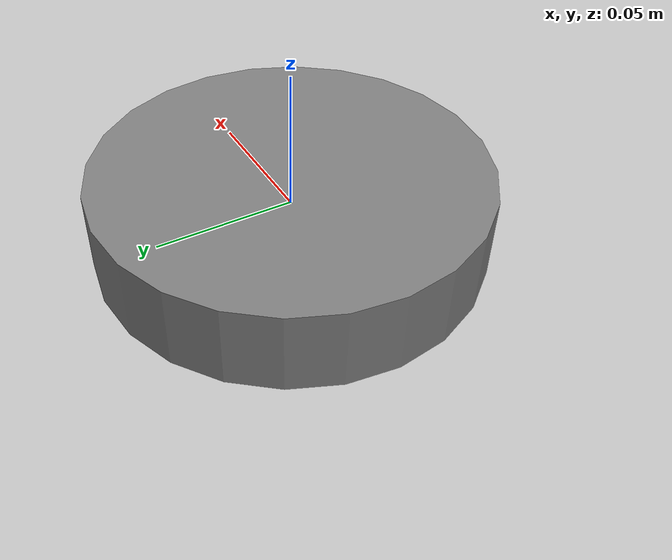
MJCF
<!--
 MuJoCo MJCF test file. See http://mujoco.org/book/index.html
  -->
<mujoco>
      <compiler inertiafromgeom="true"/>
      <worldbody>
      <body pos="0 0 0">
         <joint type="slide" axis="1 0 0"/>
         <joint type="slide" axis="0 0 1"/>
         <joint type="hinge" axis="0 1 0"/>
         <geom name="aux_1_geom" size="0.07 0.015" type="cylinder"/>
      </body>
      </worldbody>
</mujoco>
